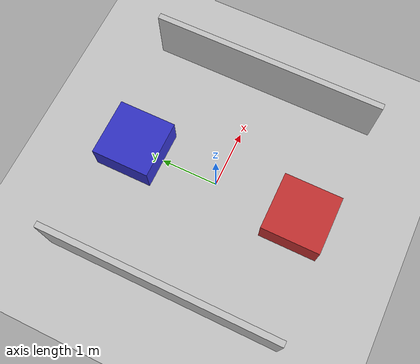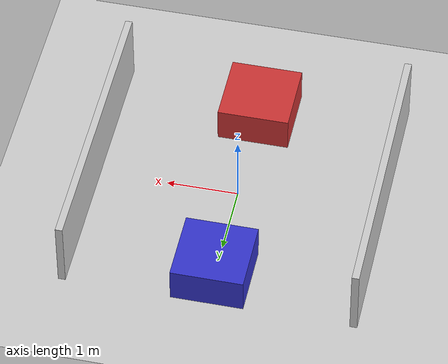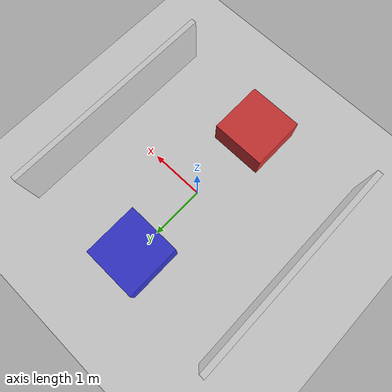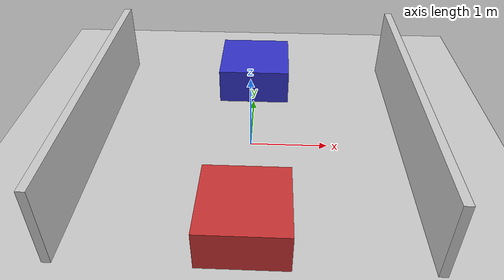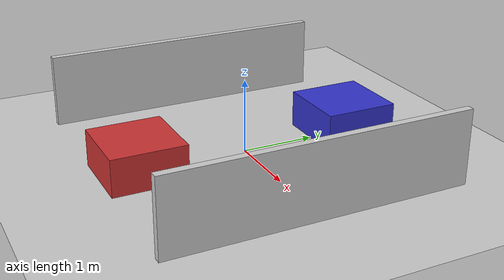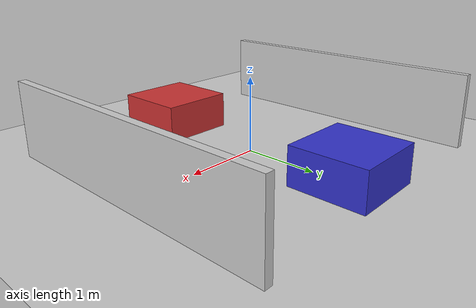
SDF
<?xml version="1.0"?>
<sdf version="1.6">
  <world name="competition_world">
    <!-- Ground Plane -->
    <include>
      <uri>model://ground_plane</uri>
    </include>

    <!-- Sun -->
    <include>
      <uri>model://sun</uri>
    </include>

    <!-- Scene settings -->
    <scene>
      <shadows>true</shadows>
      <ambient>0.4 0.4 0.4 1.0</ambient>
      <background>0.7 0.7 0.7 1.0</background>
    </scene>

    <!-- Camera settings -->
    <gui fullscreen='0'>
      <camera name='user_camera'>
        <pose frame=''>5.0 -5.0 5.0 0 0.785 0.785</pose>
        <view_controller>orbit</view_controller>
        <projection_type>perspective</projection_type>
      </camera>
    </gui>

    <!-- Physics settings -->
    <physics type="ode">
      <real_time_update_rate>1000.0</real_time_update_rate>
      <max_step_size>0.001</max_step_size>
      <real_time_factor>1</real_time_factor>
      <ode>
        <solver>
          <type>quick</type>
          <iters>150</iters>
          <precon_iters>0</precon_iters>
          <sor>1.400000</sor>
          <use_dynamic_moi_rescaling>1</use_dynamic_moi_rescaling>
        </solver>
        <constraints>
          <cfm>0.00001</cfm>
          <erp>0.2</erp>
          <contact_max_correcting_vel>2000.000000</contact_max_correcting_vel>
          <contact_surface_layer>0.01000</contact_surface_layer>
        </constraints>
      </ode>
    </physics>

    <!-- Obstacles -->
    <model name="wall1">
      <static>true</static>
      <pose>2.0 0.0 0.5 0 0 0</pose>
      <link name="link">
        <collision name="collision">
          <geometry>
            <box>
              <size>0.1 4.0 1.0</size>
            </box>
          </geometry>
        </collision>
        <visual name="visual">
          <geometry>
            <box>
              <size>0.1 4.0 1.0</size>
            </box>
          </geometry>
          <material>
            <ambient>0.8 0.8 0.8 1</ambient>
            <diffuse>0.8 0.8 0.8 1</diffuse>
            <specular>0.1 0.1 0.1 1</specular>
          </material>
        </visual>
      </link>
    </model>

    <model name="wall2">
      <static>true</static>
      <pose>-2.0 0.0 0.5 0 0 0</pose>
      <link name="link">
        <collision name="collision">
          <geometry>
            <box>
              <size>0.1 4.0 1.0</size>
            </box>
          </geometry>
        </collision>
        <visual name="visual">
          <geometry>
            <box>
              <size>0.1 4.0 1.0</size>
            </box>
          </geometry>
          <material>
            <ambient>0.8 0.8 0.8 1</ambient>
            <diffuse>0.8 0.8 0.8 1</diffuse>
            <specular>0.1 0.1 0.1 1</specular>
          </material>
        </visual>
      </link>
    </model>

    <model name="obstacle1">
      <static>true</static>
      <pose>0.0 1.5 0.25 0 0 0</pose>
      <link name="link">
        <collision name="collision">
          <geometry>
            <box>
              <size>1.0 1.0 0.5</size>
            </box>
          </geometry>
        </collision>
        <visual name="visual">
          <geometry>
            <box>
              <size>1.0 1.0 0.5</size>
            </box>
          </geometry>
          <material>
            <ambient>0.2 0.2 0.8 1</ambient>
            <diffuse>0.2 0.2 0.8 1</diffuse>
            <specular>0.1 0.1 0.1 1</specular>
          </material>
        </visual>
      </link>
    </model>

    <model name="obstacle2">
      <static>true</static>
      <pose>0.0 -1.5 0.25 0 0 0</pose>
      <link name="link">
        <collision name="collision">
          <geometry>
            <box>
              <size>1.0 1.0 0.5</size>
            </box>
          </geometry>
        </collision>
        <visual name="visual">
          <geometry>
            <box>
              <size>1.0 1.0 0.5</size>
            </box>
          </geometry>
          <material>
            <ambient>0.8 0.2 0.2 1</ambient>
            <diffuse>0.8 0.2 0.2 1</diffuse>
            <specular>0.1 0.1 0.1 1</specular>
          </material>
        </visual>
      </link>
    </model>

  </world>
</sdf>
